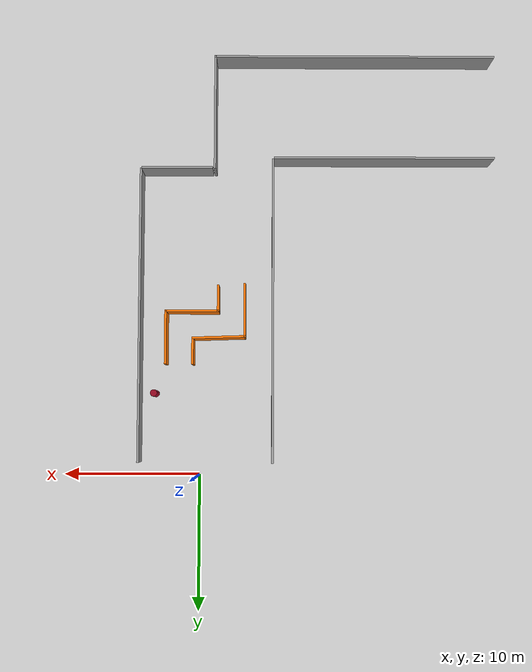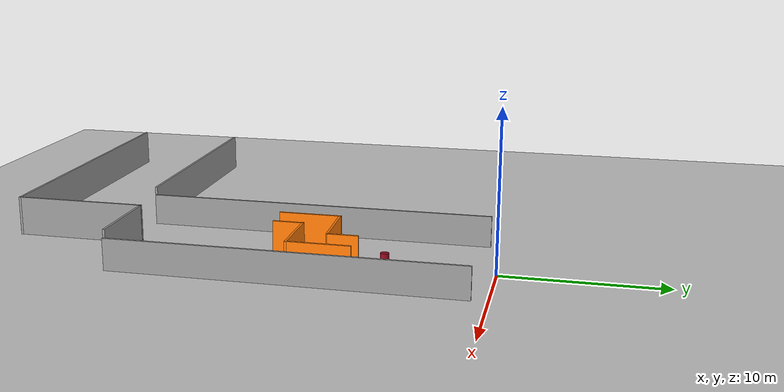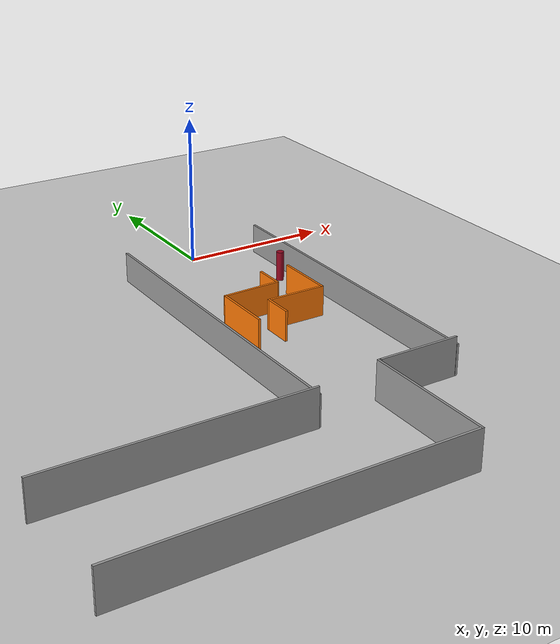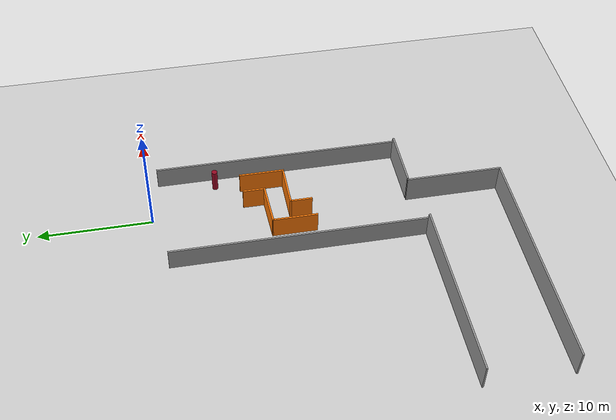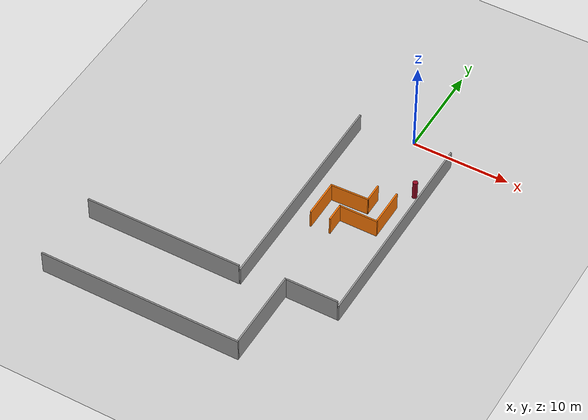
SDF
<sdf version="1.6">
 <world name="default">
  <model name="ground_plane">
   <static>1</static>
   <link name="link">
    <collision name="collision">
     <geometry><plane><normal>0 0 1</normal><size>100 100</size></plane></geometry>
     <surface><friction><ode><mu>100</mu><mu2>50</mu2></ode></friction></surface>
    </collision>
    <visual name="visual">
     <cast_shadows>0</cast_shadows>
     <geometry><plane><normal>0 0 1</normal><size>100 100</size></plane></geometry>
     <material>
      <script><uri>file://media/materials/scripts/gazebo.material</uri><name>Gazebo/Grey</name></script>
     </material>
    </visual>
    <velocity_decay><linear>0</linear><angular>0</angular></velocity_decay>
   </link>
  </model>
  <model name="jy_world_0">
   <link name="Wall_29">
    <pose>-4.806 0 0 0 0 -1.5708</pose>
    <visual name="Wall_29_Visual">
     <pose>0 0 1 0 -0 0</pose>
     <geometry><box><size>22.5 0.15 2</size></box></geometry>
     <material>
      <script><uri>file://media/materials/scripts/gazebo.material</uri><name>Gazebo/Grey</name></script>
      <ambient>1 1 1 1</ambient>
      <diffuse>0.7 0.7 0.7 1</diffuse>
      <specular>0.01 0.01 0.01 1</specular>
      <emissive>0 0 0 1</emissive>
     </material>
    </visual>
    <collision name="Wall_29_Collision">
     <pose>0 0 1 0 -0 0</pose>
     <geometry><box><size>22.5 0.15 2</size></box></geometry>
     <surface>
      <friction>
       <ode><mu>1</mu><mu2>1</mu2><fdir1>0 0 0</fdir1><slip1>0</slip1><slip2>0</slip2></ode>
       <torsional>
        <coefficient>1</coefficient>
        <patch_radius>0</patch_radius>
        <surface_radius>0</surface_radius>
        <use_patch_radius>1</use_patch_radius>
        <ode><slip>0</slip></ode>
       </torsional>
      </friction>
      <bounce><restitution_coefficient>0</restitution_coefficient><threshold>1e+06</threshold></bounce>
      <contact>
       <collide_without_contact>0</collide_without_contact>
       <collide_without_contact_bitmask>1</collide_without_contact_bitmask>
       <collide_bitmask>1</collide_bitmask>
       <ode>
        <soft_cfm>0</soft_cfm>
        <soft_erp>0.2</soft_erp>
        <kp>1e+13</kp>
        <kd>1</kd>
        <max_vel>0.01</max_vel>
        <min_depth>0</min_depth>
       </ode>
       <bullet>
        <split_impulse>1</split_impulse>
        <split_impulse_penetration_threshold>-0.01</split_impulse_penetration_threshold>
        <soft_cfm>0</soft_cfm>
        <soft_erp>0.2</soft_erp>
        <kp>1e+13</kp>
        <kd>1</kd>
       </bullet>
      </contact>
     </surface>
    </collision>
   </link>
   <link name="Wall_36">
    <pose>5 0.322999 0 0 0 -1.5708</pose>
    <inertial>
     <mass>1</mass>
     <inertia><ixx>1</ixx><ixy>0</ixy><ixz>0</ixz><iyy>1</iyy><iyz>0</iyz><izz>1</izz></inertia>
    </inertial>
    <visual name="Wall_36_Visual">
     <pose>0 0 1 0 -0 0</pose>
     <geometry><box><size>21.75 0.15 2</size></box></geometry>
     <material>
      <script><uri>file://media/materials/scripts/gazebo.material</uri><name>Gazebo/Grey</name></script>
      <ambient>1 1 1 1</ambient>
      <diffuse>0.7 0.7 0.7 1</diffuse>
      <specular>0.01 0.01 0.01 1</specular>
      <emissive>0 0 0 1</emissive>
      <shader type="vertex"><normal_map>__default__</normal_map></shader>
     </material>
    </visual>
    <collision name="Wall_36_Collision">
     <pose>0 0 1 0 -0 0</pose>
     <geometry><box><size>21.75 0.15 2</size></box></geometry>
     <surface>
      <friction>
       <ode><mu>1</mu><mu2>1</mu2><fdir1>0 0 0</fdir1><slip1>0</slip1><slip2>0</slip2></ode>
       <torsional>
        <coefficient>1</coefficient>
        <patch_radius>0</patch_radius>
        <surface_radius>0</surface_radius>
        <use_patch_radius>1</use_patch_radius>
        <ode><slip>0</slip></ode>
       </torsional>
      </friction>
      <bounce><restitution_coefficient>0</restitution_coefficient><threshold>1e+06</threshold></bounce>
      <contact>
       <collide_without_contact>0</collide_without_contact>
       <collide_without_contact_bitmask>1</collide_without_contact_bitmask>
       <collide_bitmask>1</collide_bitmask>
       <ode>
        <soft_cfm>0</soft_cfm>
        <soft_erp>0.2</soft_erp>
        <kp>1e+13</kp>
        <kd>1</kd>
        <max_vel>0.01</max_vel>
        <min_depth>0</min_depth>
       </ode>
       <bullet>
        <split_impulse>1</split_impulse>
        <split_impulse_penetration_threshold>-0.01</split_impulse_penetration_threshold>
        <soft_cfm>0</soft_cfm>
        <soft_erp>0.2</soft_erp>
        <kp>1e+13</kp>
        <kd>1</kd>
       </bullet>
      </contact>
     </surface>
    </collision>
   </link>
   <link name="Wall_47">
    <pose>3.076 2.012 0 0 0 -1.5708</pose>
    <visual name="Wall_47_Visual">
     <pose>0 0 1 0 -0 0</pose>
     <geometry><box><size>4 0.15 2</size></box></geometry>
     <material>
      <script><uri>file://media/materials/scripts/gazebo.material</uri><name>Gazebo/Grey</name></script>
      <ambient>0.996078 0.47451 0.0196078 1</ambient>
      <diffuse>0.7 0.7 0.7 1</diffuse>
      <specular>0.01 0.01 0.01 1</specular>
      <emissive>0 0 0 1</emissive>
     </material>
    </visual>
    <collision name="Wall_47_Collision">
     <pose>0 0 1 0 -0 0</pose>
     <geometry><box><size>4 0.15 2</size></box></geometry>
     <surface>
      <friction>
       <ode><mu>1</mu><mu2>1</mu2><fdir1>0 0 0</fdir1><slip1>0</slip1><slip2>0</slip2></ode>
       <torsional>
        <coefficient>1</coefficient>
        <patch_radius>0</patch_radius>
        <surface_radius>0</surface_radius>
        <use_patch_radius>1</use_patch_radius>
        <ode><slip>0</slip></ode>
       </torsional>
      </friction>
      <bounce><restitution_coefficient>0</restitution_coefficient><threshold>1e+06</threshold></bounce>
      <contact>
       <collide_without_contact>0</collide_without_contact>
       <collide_without_contact_bitmask>1</collide_without_contact_bitmask>
       <collide_bitmask>1</collide_bitmask>
       <ode>
        <soft_cfm>0</soft_cfm>
        <soft_erp>0.2</soft_erp>
        <kp>1e+13</kp>
        <kd>1</kd>
        <max_vel>0.01</max_vel>
        <min_depth>0</min_depth>
       </ode>
       <bullet>
        <split_impulse>1</split_impulse>
        <split_impulse_penetration_threshold>-0.01</split_impulse_penetration_threshold>
        <soft_cfm>0</soft_cfm>
        <soft_erp>0.2</soft_erp>
        <kp>1e+13</kp>
        <kd>1</kd>
       </bullet>
      </contact>
     </surface>
    </collision>
   </link>
   <link name="Wall_51">
    <pose>1.076 3.012 0 0 0 -1.5708</pose>
    <visual name="Wall_51_Visual">
     <pose>0 0 1 0 -0 0</pose>
     <geometry><box><size>2 0.15 2</size></box></geometry>
     <material>
      <script><uri>file://media/materials/scripts/gazebo.material</uri><name>Gazebo/Grey</name></script>
      <ambient>0.996078 0.47451 0.0196078 1</ambient>
      <diffuse>0.7 0.7 0.7 1</diffuse>
      <specular>0.01 0.01 0.01 1</specular>
      <emissive>0 0 0 1</emissive>
     </material>
    </visual>
    <collision name="Wall_51_Collision">
     <pose>0 0 1 0 -0 0</pose>
     <geometry><box><size>2 0.15 2</size></box></geometry>
     <surface>
      <friction>
       <ode><mu>1</mu><mu2>1</mu2><fdir1>0 0 0</fdir1><slip1>0</slip1><slip2>0</slip2></ode>
       <torsional>
        <coefficient>1</coefficient>
        <patch_radius>0</patch_radius>
        <surface_radius>0</surface_radius>
        <use_patch_radius>1</use_patch_radius>
        <ode><slip>0</slip></ode>
       </torsional>
      </friction>
      <bounce><restitution_coefficient>0</restitution_coefficient><threshold>1e+06</threshold></bounce>
      <contact>
       <collide_without_contact>0</collide_without_contact>
       <collide_without_contact_bitmask>1</collide_without_contact_bitmask>
       <collide_bitmask>1</collide_bitmask>
       <ode>
        <soft_cfm>0</soft_cfm>
        <soft_erp>0.2</soft_erp>
        <kp>1e+13</kp>
        <kd>1</kd>
        <max_vel>0.01</max_vel>
        <min_depth>0</min_depth>
       </ode>
       <bullet>
        <split_impulse>1</split_impulse>
        <split_impulse_penetration_threshold>-0.01</split_impulse_penetration_threshold>
        <soft_cfm>0</soft_cfm>
        <soft_erp>0.2</soft_erp>
        <kp>1e+13</kp>
        <kd>1</kd>
       </bullet>
      </contact>
     </surface>
    </collision>
   </link>
   <link name="Wall_53">
    <pose>-0.829 2.0265 0 0 0 -3.10984</pose>
    <visual name="Wall_53_Visual">
     <pose>0 0 1 0 -0 0</pose>
     <geometry><box><size>3.96192 0.15 2</size></box></geometry>
     <material>
      <script><uri>file://media/materials/scripts/gazebo.material</uri><name>Gazebo/Grey</name></script>
      <ambient>0.996078 0.47451 0.0196078 1</ambient>
      <diffuse>0.7 0.7 0.7 1</diffuse>
      <specular>0.01 0.01 0.01 1</specular>
      <emissive>0 0 0 1</emissive>
     </material>
    </visual>
    <collision name="Wall_53_Collision">
     <pose>0 0 1 0 -0 0</pose>
     <geometry><box><size>3.96192 0.15 2</size></box></geometry>
     <surface>
      <friction>
       <ode><mu>1</mu><mu2>1</mu2><fdir1>0 0 0</fdir1><slip1>0</slip1><slip2>0</slip2></ode>
       <torsional>
        <coefficient>1</coefficient>
        <patch_radius>0</patch_radius>
        <surface_radius>0</surface_radius>
        <use_patch_radius>1</use_patch_radius>
        <ode><slip>0</slip></ode>
       </torsional>
      </friction>
      <bounce><restitution_coefficient>0</restitution_coefficient><threshold>1e+06</threshold></bounce>
      <contact>
       <collide_without_contact>0</collide_without_contact>
       <collide_without_contact_bitmask>1</collide_without_contact_bitmask>
       <collide_bitmask>1</collide_bitmask>
       <ode>
        <soft_cfm>0</soft_cfm>
        <soft_erp>0.2</soft_erp>
        <kp>1e+13</kp>
        <kd>1</kd>
        <max_vel>0.01</max_vel>
        <min_depth>0</min_depth>
       </ode>
       <bullet>
        <split_impulse>1</split_impulse>
        <split_impulse_penetration_threshold>-0.01</split_impulse_penetration_threshold>
        <soft_cfm>0</soft_cfm>
        <soft_erp>0.2</soft_erp>
        <kp>1e+13</kp>
        <kd>1</kd>
       </bullet>
      </contact>
     </surface>
    </collision>
   </link>
   <link name="Wall_55">
    <pose>1.151 0.086999 0 0 -0 3.14159</pose>
    <visual name="Wall_55_Visual">
     <pose>0 0 1 0 -0 0</pose>
     <geometry><box><size>4 0.15 2</size></box></geometry>
     <material>
      <script><uri>file://media/materials/scripts/gazebo.material</uri><name>Gazebo/Grey</name></script>
      <ambient>0.996078 0.47451 0.0196078 1</ambient>
      <diffuse>0.7 0.7 0.7 1</diffuse>
      <specular>0.01 0.01 0.01 1</specular>
      <emissive>0 0 0 1</emissive>
     </material>
    </visual>
    <collision name="Wall_55_Collision">
     <pose>0 0 1 0 -0 0</pose>
     <geometry><box><size>4 0.15 2</size></box></geometry>
     <surface>
      <friction>
       <ode><mu>1</mu><mu2>1</mu2><fdir1>0 0 0</fdir1><slip1>0</slip1><slip2>0</slip2></ode>
       <torsional>
        <coefficient>1</coefficient>
        <patch_radius>0</patch_radius>
        <surface_radius>0</surface_radius>
        <use_patch_radius>1</use_patch_radius>
        <ode><slip>0</slip></ode>
       </torsional>
      </friction>
      <bounce><restitution_coefficient>0</restitution_coefficient><threshold>1e+06</threshold></bounce>
      <contact>
       <collide_without_contact>0</collide_without_contact>
       <collide_without_contact_bitmask>1</collide_without_contact_bitmask>
       <collide_bitmask>1</collide_bitmask>
       <ode>
        <soft_cfm>0</soft_cfm>
        <soft_erp>0.2</soft_erp>
        <kp>1e+13</kp>
        <kd>1</kd>
        <max_vel>0.01</max_vel>
        <min_depth>0</min_depth>
       </ode>
       <bullet>
        <split_impulse>1</split_impulse>
        <split_impulse_penetration_threshold>-0.01</split_impulse_penetration_threshold>
        <soft_cfm>0</soft_cfm>
        <soft_erp>0.2</soft_erp>
        <kp>1e+13</kp>
        <kd>1</kd>
       </bullet>
      </contact>
     </surface>
    </collision>
   </link>
   <link name="Wall_57">
    <pose>-0.774 -0.838001 0 0 0 -1.5708</pose>
    <visual name="Wall_57_Visual">
     <pose>0 0 1 0 -0 0</pose>
     <geometry><box><size>2 0.15 2</size></box></geometry>
     <material>
      <script><uri>file://media/materials/scripts/gazebo.material</uri><name>Gazebo/Grey</name></script>
      <ambient>0.996078 0.47451 0.0196078 1</ambient>
      <diffuse>0.7 0.7 0.7 1</diffuse>
      <specular>0.01 0.01 0.01 1</specular>
      <emissive>0 0 0 1</emissive>
     </material>
    </visual>
    <collision name="Wall_57_Collision">
     <pose>0 0 1 0 -0 0</pose>
     <geometry><box><size>2 0.15 2</size></box></geometry>
     <surface>
      <friction>
       <ode><mu>1</mu><mu2>1</mu2><fdir1>0 0 0</fdir1><slip1>0</slip1><slip2>0</slip2></ode>
       <torsional>
        <coefficient>1</coefficient>
        <patch_radius>0</patch_radius>
        <surface_radius>0</surface_radius>
        <use_patch_radius>1</use_patch_radius>
        <ode><slip>0</slip></ode>
       </torsional>
      </friction>
      <bounce><restitution_coefficient>0</restitution_coefficient><threshold>1e+06</threshold></bounce>
      <contact>
       <collide_without_contact>0</collide_without_contact>
       <collide_without_contact_bitmask>1</collide_without_contact_bitmask>
       <collide_bitmask>1</collide_bitmask>
       <ode>
        <soft_cfm>0</soft_cfm>
        <soft_erp>0.2</soft_erp>
        <kp>1e+13</kp>
        <kd>1</kd>
        <max_vel>0.01</max_vel>
        <min_depth>0</min_depth>
       </ode>
       <bullet>
        <split_impulse>1</split_impulse>
        <split_impulse_penetration_threshold>-0.01</split_impulse_penetration_threshold>
        <soft_cfm>0</soft_cfm>
        <soft_erp>0.2</soft_erp>
        <kp>1e+13</kp>
        <kd>1</kd>
       </bullet>
      </contact>
     </surface>
    </collision>
   </link>
   <link name="Wall_59">
    <pose>-2.734 0.041 0 0 0 -1.5708</pose>
    <visual name="Wall_59_Visual">
     <pose>0 0 1 0 -0 0</pose>
     <geometry><box><size>4 0.15 2</size></box></geometry>
     <material>
      <script><uri>file://media/materials/scripts/gazebo.material</uri><name>Gazebo/Grey</name></script>
      <ambient>0.996078 0.47451 0.0196078 1</ambient>
      <diffuse>0.7 0.7 0.7 1</diffuse>
      <specular>0.01 0.01 0.01 1</specular>
      <emissive>0 0 0 1</emissive>
     </material>
    </visual>
    <collision name="Wall_59_Collision">
     <pose>0 0 1 0 -0 0</pose>
     <geometry><box><size>4 0.15 2</size></box></geometry>
     <surface>
      <friction>
       <ode><mu>1</mu><mu2>1</mu2><fdir1>0 0 0</fdir1><slip1>0</slip1><slip2>0</slip2></ode>
       <torsional>
        <coefficient>1</coefficient>
        <patch_radius>0</patch_radius>
        <surface_radius>0</surface_radius>
        <use_patch_radius>1</use_patch_radius>
        <ode><slip>0</slip></ode>
       </torsional>
      </friction>
      <bounce><restitution_coefficient>0</restitution_coefficient><threshold>1e+06</threshold></bounce>
      <contact>
       <collide_without_contact>0</collide_without_contact>
       <collide_without_contact_bitmask>1</collide_without_contact_bitmask>
       <collide_bitmask>1</collide_bitmask>
       <ode>
        <soft_cfm>0</soft_cfm>
        <soft_erp>0.2</soft_erp>
        <kp>1e+13</kp>
        <kd>1</kd>
        <max_vel>0.01</max_vel>
        <min_depth>0</min_depth>
       </ode>
       <bullet>
        <split_impulse>1</split_impulse>
        <split_impulse_penetration_threshold>-0.01</split_impulse_penetration_threshold>
        <soft_cfm>0</soft_cfm>
        <soft_erp>0.2</soft_erp>
        <kp>1e+13</kp>
        <kd>1</kd>
       </bullet>
      </contact>
     </surface>
    </collision>
   </link>
   <static>1</static>
   <pose>-0.61694 -12.1378 0 0 -0 0</pose>
  </model>
  <model name="wall">
   <pose>-8.7538 -26.8031 0 0 -0 0</pose>
   <link name="Wall_2">
    <collision name="Wall_2_Collision">
     <geometry><box><size>16.25 0.15 2.5</size></box></geometry>
     <pose>0 0 1.25 0 -0 0</pose>
    </collision>
    <visual name="Wall_2_Visual">
     <pose>0 0 1.25 0 -0 0</pose>
     <geometry><box><size>16.25 0.15 2.5</size></box></geometry>
     <material>
      <script><uri>file://media/materials/scripts/gazebo.material</uri><name>Gazebo/Grey</name></script>
      <ambient>1 1 1 1</ambient>
     </material>
     <meta><layer>0</layer></meta>
    </visual>
    <pose>-4.8568 3.43628 0 0 -0 0</pose>
   </link>
   <link name="Wall_4">
    <collision name="Wall_4_Collision">
     <geometry><box><size>5.25 0.15 2.5</size></box></geometry>
     <pose>0 0 1.25 0 -0 0</pose>
    </collision>
    <visual name="Wall_4_Visual">
     <pose>0 0 1.25 0 -0 0</pose>
     <geometry><box><size>5.25 0.15 2.5</size></box></geometry>
     <material>
      <script><uri>file://media/materials/scripts/gazebo.material</uri><name>Gazebo/Grey</name></script>
      <ambient>1 1 1 1</ambient>
     </material>
     <meta><layer>0</layer></meta>
    </visual>
    <pose>10.4171 4.1849 0 0 -0 0</pose>
   </link>
   <link name="Wall_7">
    <collision name="Wall_7_Collision">
     <geometry><box><size>8.5 0.15 2.5</size></box></geometry>
     <pose>0 0 1.25 0 -0 0</pose>
    </collision>
    <visual name="Wall_7_Visual">
     <pose>0 0 1.25 0 -0 0</pose>
     <geometry><box><size>8.5 0.15 2.5</size></box></geometry>
     <material>
      <script><uri>file://media/materials/scripts/gazebo.material</uri><name>Gazebo/Grey</name></script>
      <ambient>1 1 1 1</ambient>
     </material>
     <meta><layer>0</layer></meta>
    </visual>
    <pose>7.63288 -0.009897 0 0 -0 -1.5708</pose>
   </link>
   <link name="Wall_8">
    <collision name="Wall_8_Collision">
     <geometry><box><size>20.75 0.15 2.5</size></box></geometry>
     <pose>0 0 1.25 0 -0 0</pose>
    </collision>
    <visual name="Wall_8_Visual">
     <pose>0 0 1.25 0 -0 0</pose>
     <geometry><box><size>20.75 0.15 2.5</size></box></geometry>
     <material>
      <script><uri>file://media/materials/scripts/gazebo.material</uri><name>Gazebo/Grey</name></script>
      <ambient>1 1 1 1</ambient>
     </material>
     <meta><layer>0</layer></meta>
    </visual>
    <pose>-2.66712 -4.1849 0 0 -0 3.14159</pose>
   </link>
   <static>1</static>
  </model>
  <model name="box_3">
   <link name="link">
    <inertial>
     <mass>1</mass>
     <inertia><ixx>0.145833</ixx><ixy>0</ixy><ixz>0</ixz><iyy>0.145833</iyy><iyz>0</iyz><izz>0.125</izz></inertia>
    </inertial>
    <visual name="visual">
     <geometry><cylinder><radius>0.25</radius><length>2</length></cylinder></geometry>
     <material>
      <script><name>Gazebo/Grey</name><uri>file://media/materials/scripts/gazebo.material</uri></script>
      <ambient>0.847 0 0.055 1</ambient>
      <diffuse>0.576 0.024 0.125 1</diffuse>
      <specular>0.01 0.01 0.01 1</specular>
      <emissive>0 0 0 1</emissive>
      <shader type="vertex"><normal_map>__default__</normal_map></shader>
     </material>
    </visual>
    <collision name="collision">
     <geometry><cylinder><radius>0.25</radius><length>2</length></cylinder></geometry>
     <surface>
      <friction>
       <ode><mu>1</mu><mu2>1</mu2><fdir1>0 0 0</fdir1><slip1>0</slip1><slip2>0</slip2></ode>
       <torsional>
        <coefficient>1</coefficient>
        <patch_radius>0</patch_radius>
        <surface_radius>0</surface_radius>
        <use_patch_radius>1</use_patch_radius>
        <ode><slip>0</slip></ode>
       </torsional>
      </friction>
      <bounce><restitution_coefficient>0</restitution_coefficient><threshold>1e+06</threshold></bounce>
      <contact>
       <collide_without_contact>0</collide_without_contact>
       <collide_without_contact_bitmask>1</collide_without_contact_bitmask>
       <collide_bitmask>1</collide_bitmask>
       <ode>
        <soft_cfm>0</soft_cfm>
        <soft_erp>0.2</soft_erp>
        <kp>1e+13</kp>
        <kd>1</kd>
        <max_vel>0.01</max_vel>
        <min_depth>0</min_depth>
       </ode>
       <bullet>
        <split_impulse>1</split_impulse>
        <split_impulse_penetration_threshold>-0.01</split_impulse_penetration_threshold>
        <soft_cfm>0</soft_cfm>
        <soft_erp>0.2</soft_erp>
        <kp>1e+13</kp>
        <kd>1</kd>
       </bullet>
      </contact>
     </surface>
    </collision>
   </link>
   <static>0</static>
   <pose>3.26667 -6 1 0 -0 0</pose>
  </model>
 </world>
</sdf>
